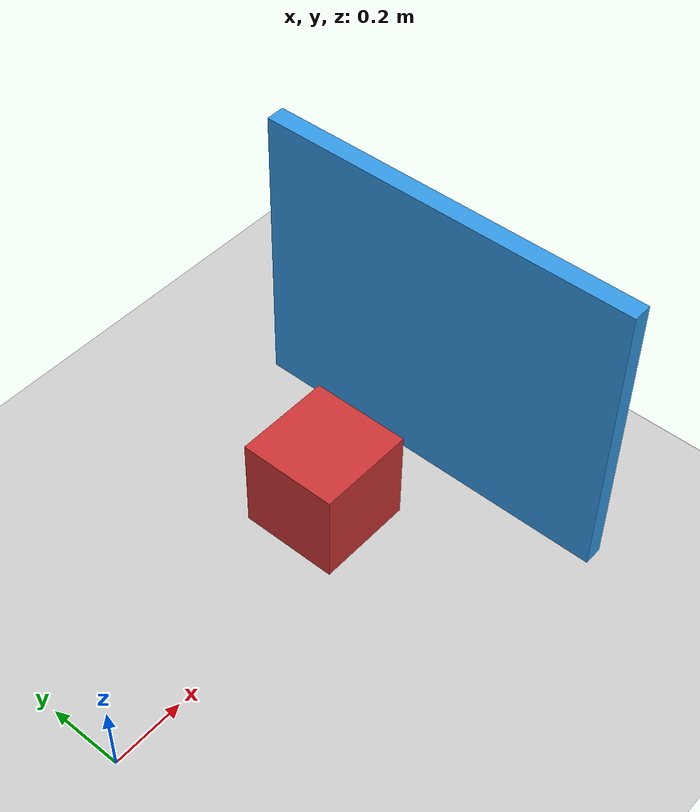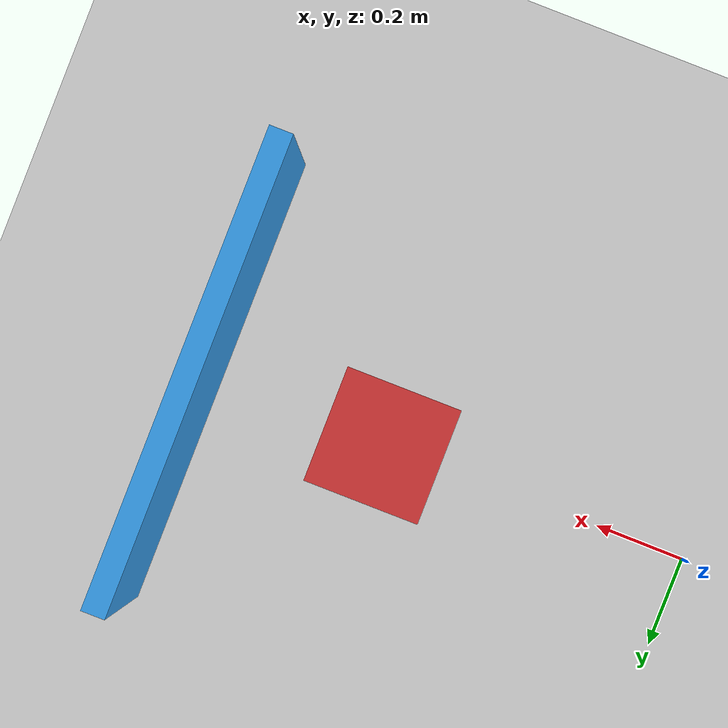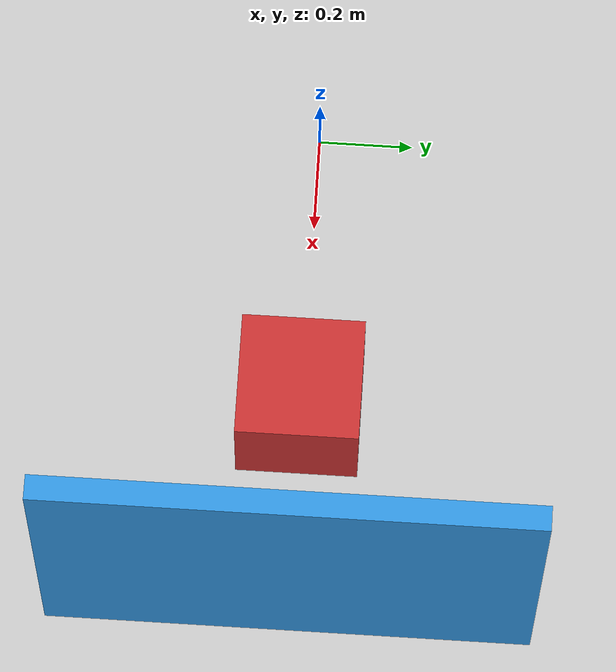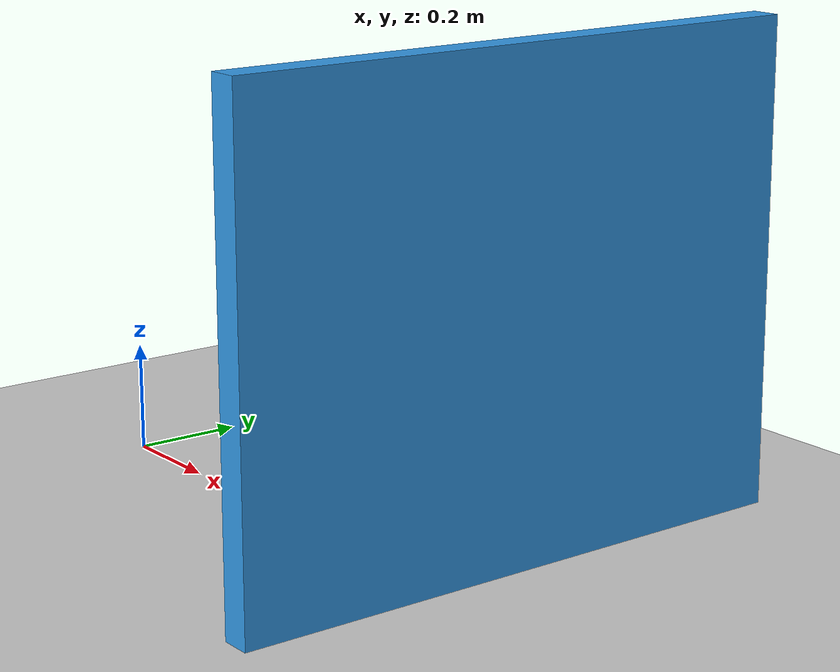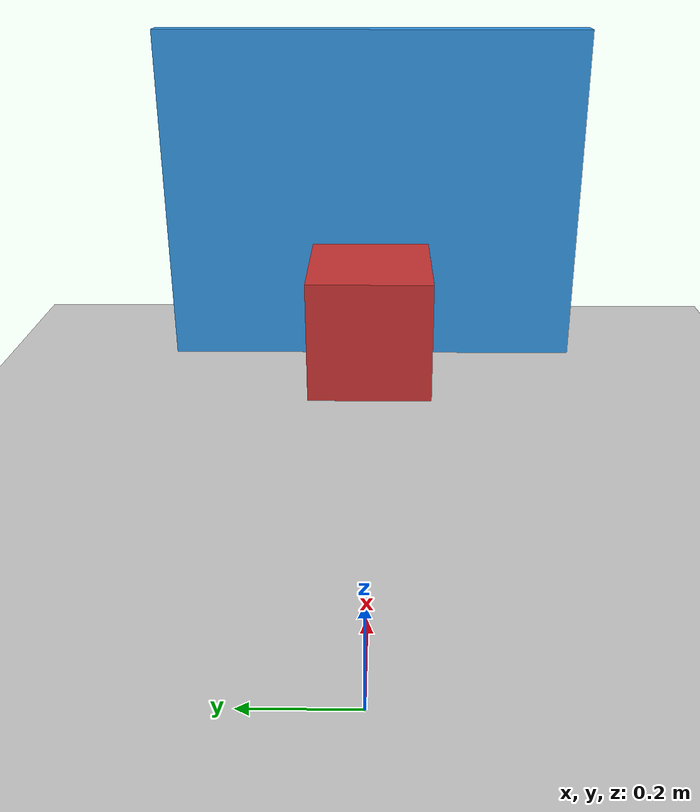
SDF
<?xml version="1.0" ?>
<sdf version="1.6">
  <world name="maixsense_empty_world">
    <physics type="ode">
      <real_time_update_rate>1000.0</real_time_update_rate>
      <max_step_size>0.001</max_step_size>
      <real_time_factor>1.0</real_time_factor>
    </physics>

    <include>
      <uri>model://sun</uri>
    </include>

    <include>
      <uri>model://ground_plane</uri>
    </include>

    <!-- Simple visual reference objects for first sensor testing.
         If they are not in the link4 sensor FOV, move them in Gazebo. -->
    <model name="test_box_front">
      <static>true</static>
      <pose>0.7 0 0.35 0 0 0</pose>
      <link name="link">
        <collision name="collision">
          <geometry>
            <box>
              <size>0.25 0.25 0.25</size>
            </box>
          </geometry>
        </collision>
        <visual name="visual">
          <geometry>
            <box>
              <size>0.25 0.25 0.25</size>
            </box>
          </geometry>
          <material>
            <ambient>0.8 0.2 0.2 1</ambient>
            <diffuse>0.8 0.2 0.2 1</diffuse>
          </material>
        </visual>
      </link>
    </model>

    <model name="test_wall">
      <static>true</static>
      <pose>1.1 0 0.5 0 0 0</pose>
      <link name="link">
        <collision name="collision">
          <geometry>
            <box>
              <size>0.05 1.0 0.8</size>
            </box>
          </geometry>
        </collision>
        <visual name="visual">
          <geometry>
            <box>
              <size>0.05 1.0 0.8</size>
            </box>
          </geometry>
          <material>
            <ambient>0.2 0.6 0.9 1</ambient>
            <diffuse>0.2 0.6 0.9 1</diffuse>
          </material>
        </visual>
      </link>
    </model>
  </world>
</sdf>
